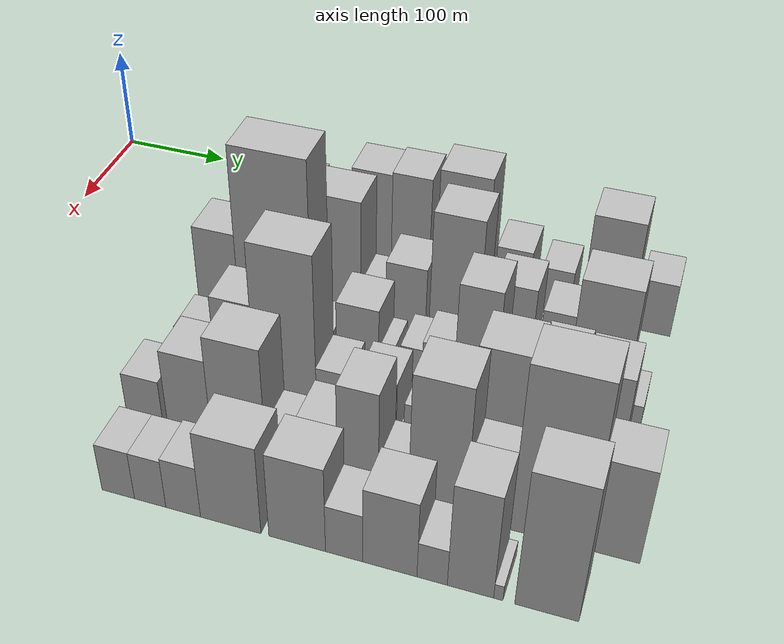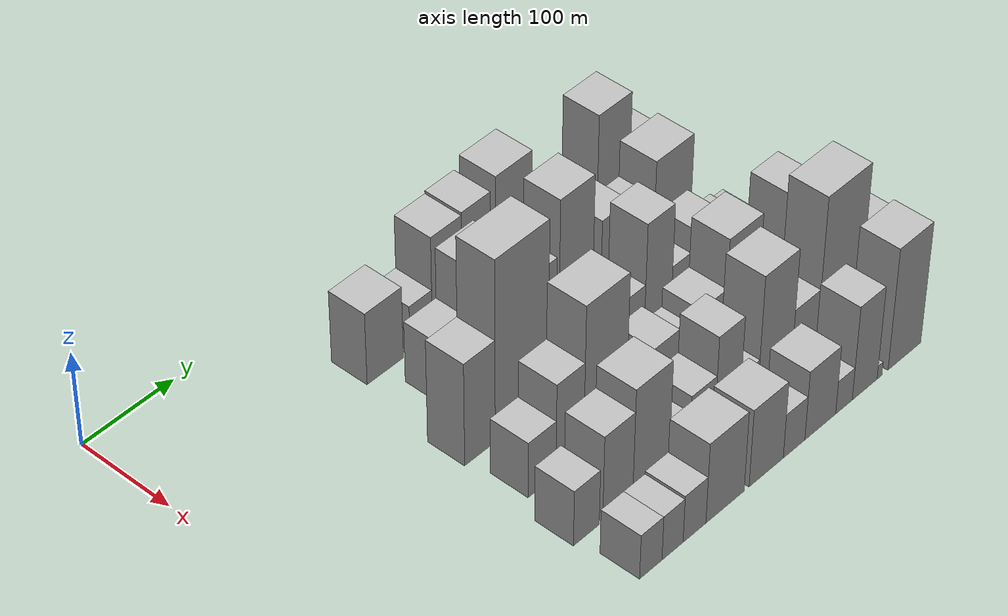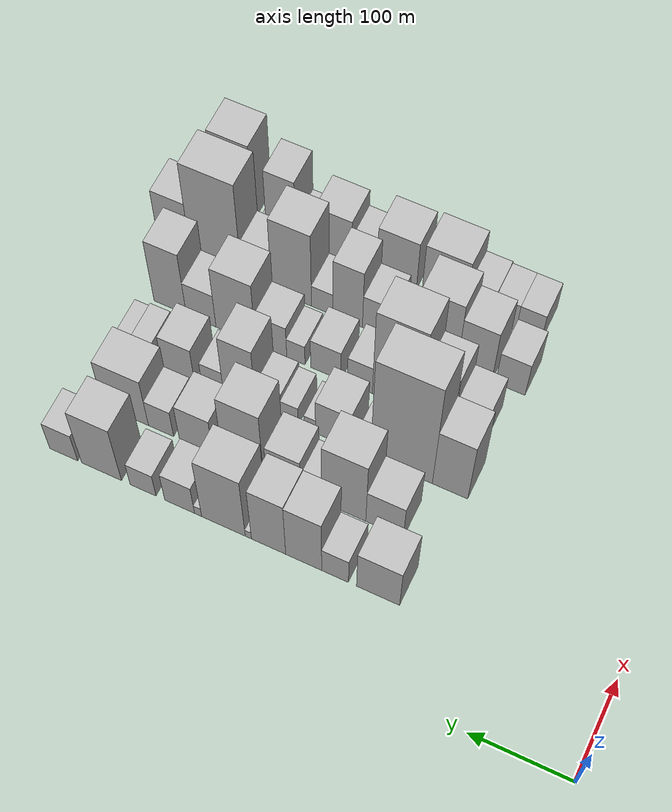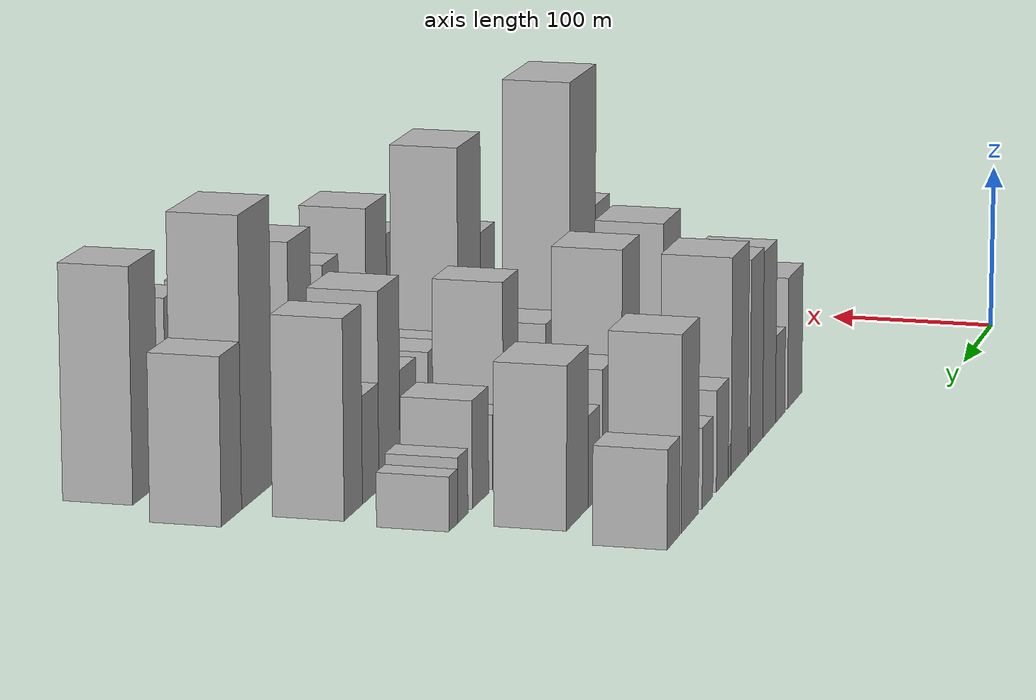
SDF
<sdf version="1.6">
 <world name="default">
  <model name="building_39">
   <static>1</static>
   <pose>100.0000 221.3806 0 0.000000 0.000000 0.000000</pose>
   <link name="link">
    <pose>0 0 39.00 0 0 0</pose>
    <collision name="collision"><geometry><box><size>40.0000 42.3551 78.0000</size></box></geometry></collision>
    <visual name="visual">
     <cast_shadows>0</cast_shadows>
     <geometry><box><size>40.0000 42.3551 78.0000</size></box></geometry>
     <material>
      <script>
       <uri>model://HANNAS_wall/materials/scripts</uri>
       <uri>model://HANNAS_wall/materials/textures</uri>
       <name>vrc/HANNAS_wall</name>
      </script>
     </material>
    </visual>
   </link>
  </model>
  <model name="building_40">
   <static>1</static>
   <pose>100.0000 263.8271 0 0.000000 0.000000 0.000000</pose>
   <link name="link">
    <pose>0 0 25.50 0 0 0</pose>
    <collision name="collision"><geometry><box><size>40.0000 26.5379 51.0000</size></box></geometry></collision>
    <visual name="visual">
     <cast_shadows>0</cast_shadows>
     <geometry><box><size>40.0000 26.5379 51.0000</size></box></geometry>
     <material>
      <script>
       <uri>model://HANNAS_wall/materials/scripts</uri>
       <uri>model://HANNAS_wall/materials/textures</uri>
       <name>vrc/HANNAS_wall</name>
      </script>
     </material>
    </visual>
   </link>
  </model>
  <model name="building_41">
   <static>1</static>
   <pose>100.0000 295.0917 0 0.000000 0.000000 0.000000</pose>
   <link name="link">
    <pose>0 0 54.00 0 0 0</pose>
    <collision name="collision"><geometry><box><size>40.0000 35.9911 108.0000</size></box></geometry></collision>
    <visual name="visual">
     <cast_shadows>0</cast_shadows>
     <geometry><box><size>40.0000 35.9911 108.0000</size></box></geometry>
     <material>
      <script>
       <uri>model://HANNAS_wall/materials/scripts</uri>
       <uri>model://HANNAS_wall/materials/textures</uri>
       <name>vrc/HANNAS_wall</name>
      </script>
     </material>
    </visual>
   </link>
  </model>
  <model name="building_42">
   <static>1</static>
   <pose>100.0000 330.3395 0 0.000000 0.000000 0.000000</pose>
   <link name="link">
    <pose>0 0 55.50 0 0 0</pose>
    <collision name="collision"><geometry><box><size>40.0000 34.5045 111.0000</size></box></geometry></collision>
    <visual name="visual">
     <cast_shadows>0</cast_shadows>
     <geometry><box><size>40.0000 34.5045 111.0000</size></box></geometry>
     <material>
      <script>
       <uri>model://HANNAS_wall/materials/scripts</uri>
       <uri>model://HANNAS_wall/materials/textures</uri>
       <name>vrc/HANNAS_wall</name>
      </script>
     </material>
    </visual>
   </link>
  </model>
  <model name="building_43">
   <static>1</static>
   <pose>100.0000 350.6911 0 0.000000 0.000000 0.000000</pose>
   <link name="link">
    <pose>0 0 7.50 0 0 0</pose>
    <collision name="collision"><geometry><box><size>40.0000 6.1987 15.0000</size></box></geometry></collision>
    <visual name="visual">
     <cast_shadows>0</cast_shadows>
     <geometry><box><size>40.0000 6.1987 15.0000</size></box></geometry>
     <material>
      <script>
       <uri>model://HANNAS_wall/materials/scripts</uri>
       <uri>model://HANNAS_wall/materials/textures</uri>
       <name>vrc/HANNAS_wall</name>
      </script>
     </material>
    </visual>
   </link>
  </model>
  <model name="building_44">
   <static>1</static>
   <pose>100.0000 376.0655 0 0.000000 0.000000 0.000000</pose>
   <link name="link">
    <pose>0 0 61.50 0 0 0</pose>
    <collision name="collision"><geometry><box><size>40.0000 44.5501 123.0000</size></box></geometry></collision>
    <visual name="visual">
     <cast_shadows>0</cast_shadows>
     <geometry><box><size>40.0000 44.5501 123.0000</size></box></geometry>
     <material>
      <script>
       <uri>model://HANNAS_wall/materials/scripts</uri>
       <uri>model://HANNAS_wall/materials/textures</uri>
       <name>vrc/HANNAS_wall</name>
      </script>
     </material>
    </visual>
   </link>
  </model>
  <model name="building_45">
   <static>1</static>
   <pose>100.0000 401.9519 0 0.000000 0.000000 0.000000</pose>
   <link name="link">
    <pose>0 0 9.00 0 0 0</pose>
    <collision name="collision"><geometry><box><size>40.0000 7.2227 18.0000</size></box></geometry></collision>
    <visual name="visual">
     <cast_shadows>0</cast_shadows>
     <geometry><box><size>40.0000 7.2227 18.0000</size></box></geometry>
     <material>
      <script>
       <uri>model://HANNAS_wall/materials/scripts</uri>
       <uri>model://HANNAS_wall/materials/textures</uri>
       <name>vrc/HANNAS_wall</name>
      </script>
     </material>
    </visual>
   </link>
  </model>
  <model name="building_46">
   <static>1</static>
   <pose>100.0000 420.9281 0 0.000000 0.000000 0.000000</pose>
   <link name="link">
    <pose>0 0 28.50 0 0 0</pose>
    <collision name="collision"><geometry><box><size>40.0000 30.7296 57.0000</size></box></geometry></collision>
    <visual name="visual">
     <cast_shadows>0</cast_shadows>
     <geometry><box><size>40.0000 30.7296 57.0000</size></box></geometry>
     <material>
      <script>
       <uri>model://HANNAS_wall/materials/scripts</uri>
       <uri>model://HANNAS_wall/materials/textures</uri>
       <name>vrc/HANNAS_wall</name>
      </script>
     </material>
    </visual>
   </link>
  </model>
  <model name="building_47">
   <static>1</static>
   <pose>100.0000 458.7642 0 0.000000 0.000000 0.000000</pose>
   <link name="link">
    <pose>0 0 22.50 0 0 0</pose>
    <collision name="collision"><geometry><box><size>40.0000 26.9426 45.0000</size></box></geometry></collision>
    <visual name="visual">
     <cast_shadows>0</cast_shadows>
     <geometry><box><size>40.0000 26.9426 45.0000</size></box></geometry>
     <material>
      <script>
       <uri>model://HANNAS_wall/materials/scripts</uri>
       <uri>model://HANNAS_wall/materials/textures</uri>
       <name>vrc/HANNAS_wall</name>
      </script>
     </material>
    </visual>
   </link>
  </model>
  <model name="building_48">
   <static>1</static>
   <pose>100.0000 502.2088 0 0.000000 0.000000 0.000000</pose>
   <link name="link">
    <pose>0 0 54.00 0 0 0</pose>
    <collision name="collision"><geometry><box><size>40.0000 41.9466 108.0000</size></box></geometry></collision>
    <visual name="visual">
     <cast_shadows>0</cast_shadows>
     <geometry><box><size>40.0000 41.9466 108.0000</size></box></geometry>
     <material>
      <script>
       <uri>model://HANNAS_wall/materials/scripts</uri>
       <uri>model://HANNAS_wall/materials/textures</uri>
       <name>vrc/HANNAS_wall</name>
      </script>
     </material>
    </visual>
   </link>
  </model>
  <model name="building_49">
   <static>1</static>
   <pose>100.0000 541.9943 0 0.000000 0.000000 0.000000</pose>
   <link name="link">
    <pose>0 0 27.00 0 0 0</pose>
    <collision name="collision"><geometry><box><size>40.0000 29.6243 54.0000</size></box></geometry></collision>
    <visual name="visual">
     <cast_shadows>0</cast_shadows>
     <geometry><box><size>40.0000 29.6243 54.0000</size></box></geometry>
     <material>
      <script>
       <uri>model://HANNAS_wall/materials/scripts</uri>
       <uri>model://HANNAS_wall/materials/textures</uri>
       <name>vrc/HANNAS_wall</name>
      </script>
     </material>
    </visual>
   </link>
  </model>
  <model name="building_96">
   <static>1</static>
   <pose>160.0000 242.5137 0 0.000000 0.000000 0.000000</pose>
   <link name="link">
    <pose>0 0 33.00 0 0 0</pose>
    <collision name="collision"><geometry><box><size>40.0000 37.5573 66.0000</size></box></geometry></collision>
    <visual name="visual">
     <cast_shadows>0</cast_shadows>
     <geometry><box><size>40.0000 37.5573 66.0000</size></box></geometry>
     <material>
      <script>
       <uri>model://HANNAS_wall/materials/scripts</uri>
       <uri>model://HANNAS_wall/materials/textures</uri>
       <name>vrc/HANNAS_wall</name>
      </script>
     </material>
    </visual>
   </link>
  </model>
  <model name="building_97">
   <static>1</static>
   <pose>160.0000 283.4881 0 0.000000 0.000000 0.000000</pose>
   <link name="link">
    <pose>0 0 60.00 0 0 0</pose>
    <collision name="collision"><geometry><box><size>40.0000 44.3914 120.0000</size></box></geometry></collision>
    <visual name="visual">
     <cast_shadows>0</cast_shadows>
     <geometry><box><size>40.0000 44.3914 120.0000</size></box></geometry>
     <material>
      <script>
       <uri>model://HANNAS_wall/materials/scripts</uri>
       <uri>model://HANNAS_wall/materials/textures</uri>
       <name>vrc/HANNAS_wall</name>
      </script>
     </material>
    </visual>
   </link>
  </model>
  <model name="building_98">
   <static>1</static>
   <pose>160.0000 316.4869 0 0.000000 0.000000 0.000000</pose>
   <link name="link">
    <pose>0 0 19.50 0 0 0</pose>
    <collision name="collision"><geometry><box><size>40.0000 21.6061 39.0000</size></box></geometry></collision>
    <visual name="visual">
     <cast_shadows>0</cast_shadows>
     <geometry><box><size>40.0000 21.6061 39.0000</size></box></geometry>
     <material>
      <script>
       <uri>model://HANNAS_wall/materials/scripts</uri>
       <uri>model://HANNAS_wall/materials/textures</uri>
       <name>vrc/HANNAS_wall</name>
      </script>
     </material>
    </visual>
   </link>
  </model>
  <model name="building_99">
   <static>1</static>
   <pose>160.0000 344.7791 0 0.000000 0.000000 0.000000</pose>
   <link name="link">
    <pose>0 0 33.00 0 0 0</pose>
    <collision name="collision"><geometry><box><size>40.0000 34.9784 66.0000</size></box></geometry></collision>
    <visual name="visual">
     <cast_shadows>0</cast_shadows>
     <geometry><box><size>40.0000 34.9784 66.0000</size></box></geometry>
     <material>
      <script>
       <uri>model://HANNAS_wall/materials/scripts</uri>
       <uri>model://HANNAS_wall/materials/textures</uri>
       <name>vrc/HANNAS_wall</name>
      </script>
     </material>
    </visual>
   </link>
  </model>
  <model name="building_100">
   <static>1</static>
   <pose>160.0000 386.2729 0 0.000000 0.000000 0.000000</pose>
   <link name="link">
    <pose>0 0 63.00 0 0 0</pose>
    <collision name="collision"><geometry><box><size>40.0000 42.0091 126.0000</size></box></geometry></collision>
    <visual name="visual">
     <cast_shadows>0</cast_shadows>
     <geometry><box><size>40.0000 42.0091 126.0000</size></box></geometry>
     <material>
      <script>
       <uri>model://HANNAS_wall/materials/scripts</uri>
       <uri>model://HANNAS_wall/materials/textures</uri>
       <name>vrc/HANNAS_wall</name>
      </script>
     </material>
    </visual>
   </link>
  </model>
  <model name="building_101">
   <static>1</static>
   <pose>160.0000 412.4397 0 0.000000 0.000000 0.000000</pose>
   <link name="link">
    <pose>0 0 12.00 0 0 0</pose>
    <collision name="collision"><geometry><box><size>40.0000 10.3246 24.0000</size></box></geometry></collision>
    <visual name="visual">
     <cast_shadows>0</cast_shadows>
     <geometry><box><size>40.0000 10.3246 24.0000</size></box></geometry>
     <material>
      <script>
       <uri>model://HANNAS_wall/materials/scripts</uri>
       <uri>model://HANNAS_wall/materials/textures</uri>
       <name>vrc/HANNAS_wall</name>
      </script>
     </material>
    </visual>
   </link>
  </model>
  <model name="building_102">
   <static>1</static>
   <pose>160.0000 435.0619 0 0.000000 0.000000 0.000000</pose>
   <link name="link">
    <pose>0 0 34.50 0 0 0</pose>
    <collision name="collision"><geometry><box><size>40.0000 34.9196 69.0000</size></box></geometry></collision>
    <visual name="visual">
     <cast_shadows>0</cast_shadows>
     <geometry><box><size>40.0000 34.9196 69.0000</size></box></geometry>
     <material>
      <script>
       <uri>model://HANNAS_wall/materials/scripts</uri>
       <uri>model://HANNAS_wall/materials/textures</uri>
       <name>vrc/HANNAS_wall</name>
      </script>
     </material>
    </visual>
   </link>
  </model>
  <model name="building_103">
   <static>1</static>
   <pose>160.0000 471.7679 0 0.000000 0.000000 0.000000</pose>
   <link name="link">
    <pose>0 0 25.50 0 0 0</pose>
    <collision name="collision"><geometry><box><size>40.0000 26.4926 51.0000</size></box></geometry></collision>
    <visual name="visual">
     <cast_shadows>0</cast_shadows>
     <geometry><box><size>40.0000 26.4926 51.0000</size></box></geometry>
     <material>
      <script>
       <uri>model://HANNAS_wall/materials/scripts</uri>
       <uri>model://HANNAS_wall/materials/textures</uri>
       <name>vrc/HANNAS_wall</name>
      </script>
     </material>
    </visual>
   </link>
  </model>
  <model name="building_104">
   <static>1</static>
   <pose>160.0000 509.1360 0 0.000000 0.000000 0.000000</pose>
   <link name="link">
    <pose>0 0 45.00 0 0 0</pose>
    <collision name="collision"><geometry><box><size>40.0000 48.2435 90.0000</size></box></geometry></collision>
    <visual name="visual">
     <cast_shadows>0</cast_shadows>
     <geometry><box><size>40.0000 48.2435 90.0000</size></box></geometry>
     <material>
      <script>
       <uri>model://HANNAS_wall/materials/scripts</uri>
       <uri>model://HANNAS_wall/materials/textures</uri>
       <name>vrc/HANNAS_wall</name>
      </script>
     </material>
    </visual>
   </link>
  </model>
  <model name="building_148">
   <static>1</static>
   <pose>220.0000 203.9189 0 0.000000 0.000000 0.000000</pose>
   <link name="link">
    <pose>0 0 55.50 0 0 0</pose>
    <collision name="collision"><geometry><box><size>40.0000 35.5840 111.0000</size></box></geometry></collision>
    <visual name="visual">
     <cast_shadows>0</cast_shadows>
     <geometry><box><size>40.0000 35.5840 111.0000</size></box></geometry>
     <material>
      <script>
       <uri>model://HANNAS_wall/materials/scripts</uri>
       <uri>model://HANNAS_wall/materials/textures</uri>
       <name>vrc/HANNAS_wall</name>
      </script>
     </material>
    </visual>
   </link>
  </model>
  <model name="building_149">
   <static>1</static>
   <pose>220.0000 253.0381 0 0.000000 0.000000 0.000000</pose>
   <link name="link">
    <pose>0 0 97.50 0 0 0</pose>
    <collision name="collision"><geometry><box><size>40.0000 62.6543 195.0000</size></box></geometry></collision>
    <visual name="visual">
     <cast_shadows>0</cast_shadows>
     <geometry><box><size>40.0000 62.6543 195.0000</size></box></geometry>
     <material>
      <script>
       <uri>model://HANNAS_wall/materials/scripts</uri>
       <uri>model://HANNAS_wall/materials/textures</uri>
       <name>vrc/HANNAS_wall</name>
      </script>
     </material>
    </visual>
   </link>
  </model>
  <model name="building_150">
   <static>1</static>
   <pose>220.0000 292.7173 0 0.000000 0.000000 0.000000</pose>
   <link name="link">
    <pose>0 0 15.00 0 0 0</pose>
    <collision name="collision"><geometry><box><size>40.0000 16.7041 30.0000</size></box></geometry></collision>
    <visual name="visual">
     <cast_shadows>0</cast_shadows>
     <geometry><box><size>40.0000 16.7041 30.0000</size></box></geometry>
     <material>
      <script>
       <uri>model://HANNAS_wall/materials/scripts</uri>
       <uri>model://HANNAS_wall/materials/textures</uri>
       <name>vrc/HANNAS_wall</name>
      </script>
     </material>
    </visual>
   </link>
  </model>
  <model name="building_151">
   <static>1</static>
   <pose>220.0000 322.8908 0 0.000000 0.000000 0.000000</pose>
   <link name="link">
    <pose>0 0 33.00 0 0 0</pose>
    <collision name="collision"><geometry><box><size>40.0000 35.6428 66.0000</size></box></geometry></collision>
    <visual name="visual">
     <cast_shadows>0</cast_shadows>
     <geometry><box><size>40.0000 35.6428 66.0000</size></box></geometry>
     <material>
      <script>
       <uri>model://HANNAS_wall/materials/scripts</uri>
       <uri>model://HANNAS_wall/materials/textures</uri>
       <name>vrc/HANNAS_wall</name>
      </script>
     </material>
    </visual>
   </link>
  </model>
  <model name="building_152">
   <static>1</static>
   <pose>220.0000 346.6887 0 0.000000 0.000000 0.000000</pose>
   <link name="link">
    <pose>0 0 13.50 0 0 0</pose>
    <collision name="collision"><geometry><box><size>40.0000 11.9531 27.0000</size></box></geometry></collision>
    <visual name="visual">
     <cast_shadows>0</cast_shadows>
     <geometry><box><size>40.0000 11.9531 27.0000</size></box></geometry>
     <material>
      <script>
       <uri>model://HANNAS_wall/materials/scripts</uri>
       <uri>model://HANNAS_wall/materials/textures</uri>
       <name>vrc/HANNAS_wall</name>
      </script>
     </material>
    </visual>
   </link>
  </model>
  <model name="building_153">
   <static>1</static>
   <pose>220.0000 367.7406 0 0.000000 0.000000 0.000000</pose>
   <link name="link">
    <pose>0 0 18.00 0 0 0</pose>
    <collision name="collision"><geometry><box><size>40.0000 18.1506 36.0000</size></box></geometry></collision>
    <visual name="visual">
     <cast_shadows>0</cast_shadows>
     <geometry><box><size>40.0000 18.1506 36.0000</size></box></geometry>
     <material>
      <script>
       <uri>model://HANNAS_wall/materials/scripts</uri>
       <uri>model://HANNAS_wall/materials/textures</uri>
       <name>vrc/HANNAS_wall</name>
      </script>
     </material>
    </visual>
   </link>
  </model>
  <model name="building_154">
   <static>1</static>
   <pose>220.0000 389.9345 0 0.000000 0.000000 0.000000</pose>
   <link name="link">
    <pose>0 0 22.50 0 0 0</pose>
    <collision name="collision"><geometry><box><size>40.0000 26.2372 45.0000</size></box></geometry></collision>
    <visual name="visual">
     <cast_shadows>0</cast_shadows>
     <geometry><box><size>40.0000 26.2372 45.0000</size></box></geometry>
     <material>
      <script>
       <uri>model://HANNAS_wall/materials/scripts</uri>
       <uri>model://HANNAS_wall/materials/textures</uri>
       <name>vrc/HANNAS_wall</name>
      </script>
     </material>
    </visual>
   </link>
  </model>
  <model name="building_155">
   <static>1</static>
   <pose>220.0000 420.0247 0 0.000000 0.000000 0.000000</pose>
   <link name="link">
    <pose>0 0 55.50 0 0 0</pose>
    <collision name="collision"><geometry><box><size>40.0000 33.9432 111.0000</size></box></geometry></collision>
    <visual name="visual">
     <cast_shadows>0</cast_shadows>
     <geometry><box><size>40.0000 33.9432 111.0000</size></box></geometry>
     <material>
      <script>
       <uri>model://HANNAS_wall/materials/scripts</uri>
       <uri>model://HANNAS_wall/materials/textures</uri>
       <name>vrc/HANNAS_wall</name>
      </script>
     </material>
    </visual>
   </link>
  </model>
  <model name="building_156">
   <static>1</static>
   <pose>220.0000 448.5313 0 0.000000 0.000000 0.000000</pose>
   <link name="link">
    <pose>0 0 21.00 0 0 0</pose>
    <collision name="collision"><geometry><box><size>40.0000 23.0702 42.0000</size></box></geometry></collision>
    <visual name="visual">
     <cast_shadows>0</cast_shadows>
     <geometry><box><size>40.0000 23.0702 42.0000</size></box></geometry>
     <material>
      <script>
       <uri>model://HANNAS_wall/materials/scripts</uri>
       <uri>model://HANNAS_wall/materials/textures</uri>
       <name>vrc/HANNAS_wall</name>
      </script>
     </material>
    </visual>
   </link>
  </model>
  <model name="building_157">
   <static>1</static>
   <pose>220.0000 485.1778 0 0.000000 0.000000 0.000000</pose>
   <link name="link">
    <pose>0 0 30.00 0 0 0</pose>
    <collision name="collision"><geometry><box><size>40.0000 34.2228 60.0000</size></box></geometry></collision>
    <visual name="visual">
     <cast_shadows>0</cast_shadows>
     <geometry><box><size>40.0000 34.2228 60.0000</size></box></geometry>
     <material>
      <script>
       <uri>model://HANNAS_wall/materials/scripts</uri>
       <uri>model://HANNAS_wall/materials/textures</uri>
       <name>vrc/HANNAS_wall</name>
      </script>
     </material>
    </visual>
   </link>
  </model>
  <model name="building_158">
   <static>1</static>
   <pose>220.0000 521.9402 0 0.000000 0.000000 0.000000</pose>
   <link name="link">
    <pose>0 0 18.00 0 0 0</pose>
    <collision name="collision"><geometry><box><size>40.0000 21.3019 36.0000</size></box></geometry></collision>
    <visual name="visual">
     <cast_shadows>0</cast_shadows>
     <geometry><box><size>40.0000 21.3019 36.0000</size></box></geometry>
     <material>
      <script>
       <uri>model://HANNAS_wall/materials/scripts</uri>
       <uri>model://HANNAS_wall/materials/textures</uri>
       <name>vrc/HANNAS_wall</name>
      </script>
     </material>
    </visual>
   </link>
  </model>
  <model name="building_159">
   <static>1</static>
   <pose>220.0000 541.1956 0 0.000000 0.000000 0.000000</pose>
   <link name="link">
    <pose>0 0 15.00 0 0 0</pose>
    <collision name="collision"><geometry><box><size>40.0000 17.2089 30.0000</size></box></geometry></collision>
    <visual name="visual">
     <cast_shadows>0</cast_shadows>
     <geometry><box><size>40.0000 17.2089 30.0000</size></box></geometry>
     <material>
      <script>
       <uri>model://HANNAS_wall/materials/scripts</uri>
       <uri>model://HANNAS_wall/materials/textures</uri>
       <name>vrc/HANNAS_wall</name>
      </script>
     </material>
    </visual>
   </link>
  </model>
  <model name="building_199">
   <static>1</static>
   <pose>280.0000 210.2119 0 0.000000 0.000000 0.000000</pose>
   <link name="link">
    <pose>0 0 30.00 0 0 0</pose>
    <collision name="collision"><geometry><box><size>40.0000 32.4136 60.0000</size></box></geometry></collision>
    <visual name="visual">
     <cast_shadows>0</cast_shadows>
     <geometry><box><size>40.0000 32.4136 60.0000</size></box></geometry>
     <material>
      <script>
       <uri>model://HANNAS_wall/materials/scripts</uri>
       <uri>model://HANNAS_wall/materials/textures</uri>
       <name>vrc/HANNAS_wall</name>
      </script>
     </material>
    </visual>
   </link>
  </model>
  <model name="building_200">
   <static>1</static>
   <pose>280.0000 242.8507 0 0.000000 0.000000 0.000000</pose>
   <link name="link">
    <pose>0 0 49.50 0 0 0</pose>
    <collision name="collision"><geometry><box><size>40.0000 32.8638 99.0000</size></box></geometry></collision>
    <visual name="visual">
     <cast_shadows>0</cast_shadows>
     <geometry><box><size>40.0000 32.8638 99.0000</size></box></geometry>
     <material>
      <script>
       <uri>model://HANNAS_wall/materials/scripts</uri>
       <uri>model://HANNAS_wall/materials/textures</uri>
       <name>vrc/HANNAS_wall</name>
      </script>
     </material>
    </visual>
   </link>
  </model>
  <model name="building_201">
   <static>1</static>
   <pose>280.0000 284.7451 0 0.000000 0.000000 0.000000</pose>
   <link name="link">
    <pose>0 0 79.50 0 0 0</pose>
    <collision name="collision"><geometry><box><size>40.0000 50.9250 159.0000</size></box></geometry></collision>
    <visual name="visual">
     <cast_shadows>0</cast_shadows>
     <geometry><box><size>40.0000 50.9250 159.0000</size></box></geometry>
     <material>
      <script>
       <uri>model://HANNAS_wall/materials/scripts</uri>
       <uri>model://HANNAS_wall/materials/textures</uri>
       <name>vrc/HANNAS_wall</name>
      </script>
     </material>
    </visual>
   </link>
  </model>
  <model name="building_202">
   <static>1</static>
   <pose>280.0000 323.1229 0 0.000000 0.000000 0.000000</pose>
   <link name="link">
    <pose>0 0 25.50 0 0 0</pose>
    <collision name="collision"><geometry><box><size>40.0000 25.8307 51.0000</size></box></geometry></collision>
    <visual name="visual">
     <cast_shadows>0</cast_shadows>
     <geometry><box><size>40.0000 25.8307 51.0000</size></box></geometry>
     <material>
      <script>
       <uri>model://HANNAS_wall/materials/scripts</uri>
       <uri>model://HANNAS_wall/materials/textures</uri>
       <name>vrc/HANNAS_wall</name>
      </script>
     </material>
    </visual>
   </link>
  </model>
  <model name="building_203">
   <static>1</static>
   <pose>280.0000 358.8118 0 0.000000 0.000000 0.000000</pose>
   <link name="link">
    <pose>0 0 27.00 0 0 0</pose>
    <collision name="collision"><geometry><box><size>40.0000 31.5470 54.0000</size></box></geometry></collision>
    <visual name="visual">
     <cast_shadows>0</cast_shadows>
     <geometry><box><size>40.0000 31.5470 54.0000</size></box></geometry>
     <material>
      <script>
       <uri>model://HANNAS_wall/materials/scripts</uri>
       <uri>model://HANNAS_wall/materials/textures</uri>
       <name>vrc/HANNAS_wall</name>
      </script>
     </material>
    </visual>
   </link>
  </model>
  <model name="building_204">
   <static>1</static>
   <pose>280.0000 390.2404 0 0.000000 0.000000 0.000000</pose>
   <link name="link">
    <pose>0 0 18.00 0 0 0</pose>
    <collision name="collision"><geometry><box><size>40.0000 19.3102 36.0000</size></box></geometry></collision>
    <visual name="visual">
     <cast_shadows>0</cast_shadows>
     <geometry><box><size>40.0000 19.3102 36.0000</size></box></geometry>
     <material>
      <script>
       <uri>model://HANNAS_wall/materials/scripts</uri>
       <uri>model://HANNAS_wall/materials/textures</uri>
       <name>vrc/HANNAS_wall</name>
      </script>
     </material>
    </visual>
   </link>
  </model>
  <model name="building_205">
   <static>1</static>
   <pose>280.0000 416.5583 0 0.000000 0.000000 0.000000</pose>
   <link name="link">
    <pose>0 0 28.50 0 0 0</pose>
    <collision name="collision"><geometry><box><size>40.0000 33.3257 57.0000</size></box></geometry></collision>
    <visual name="visual">
     <cast_shadows>0</cast_shadows>
     <geometry><box><size>40.0000 33.3257 57.0000</size></box></geometry>
     <material>
      <script>
       <uri>model://HANNAS_wall/materials/scripts</uri>
       <uri>model://HANNAS_wall/materials/textures</uri>
       <name>vrc/HANNAS_wall</name>
      </script>
     </material>
    </visual>
   </link>
  </model>
  <model name="building_206">
   <static>1</static>
   <pose>280.0000 454.3594 0 0.000000 0.000000 0.000000</pose>
   <link name="link">
    <pose>0 0 55.50 0 0 0</pose>
    <collision name="collision"><geometry><box><size>40.0000 42.2766 111.0000</size></box></geometry></collision>
    <visual name="visual">
     <cast_shadows>0</cast_shadows>
     <geometry><box><size>40.0000 42.2766 111.0000</size></box></geometry>
     <material>
      <script>
       <uri>model://HANNAS_wall/materials/scripts</uri>
       <uri>model://HANNAS_wall/materials/textures</uri>
       <name>vrc/HANNAS_wall</name>
      </script>
     </material>
    </visual>
   </link>
  </model>
  <model name="building_207">
   <static>1</static>
   <pose>280.0000 491.5989 0 0.000000 0.000000 0.000000</pose>
   <link name="link">
    <pose>0 0 30.00 0 0 0</pose>
    <collision name="collision"><geometry><box><size>40.0000 32.2023 60.0000</size></box></geometry></collision>
    <visual name="visual">
     <cast_shadows>0</cast_shadows>
     <geometry><box><size>40.0000 32.2023 60.0000</size></box></geometry>
     <material>
      <script>
       <uri>model://HANNAS_wall/materials/scripts</uri>
       <uri>model://HANNAS_wall/materials/textures</uri>
       <name>vrc/HANNAS_wall</name>
      </script>
     </material>
    </visual>
   </link>
  </model>
  <model name="building_208">
   <static>1</static>
   <pose>280.0000 525.2257 0 0.000000 0.000000 0.000000</pose>
   <link name="link">
    <pose>0 0 55.50 0 0 0</pose>
    <collision name="collision"><geometry><box><size>40.0000 35.0512 111.0000</size></box></geometry></collision>
    <visual name="visual">
     <cast_shadows>0</cast_shadows>
     <geometry><box><size>40.0000 35.0512 111.0000</size></box></geometry>
     <material>
      <script>
       <uri>model://HANNAS_wall/materials/scripts</uri>
       <uri>model://HANNAS_wall/materials/textures</uri>
       <name>vrc/HANNAS_wall</name>
      </script>
     </material>
    </visual>
   </link>
  </model>
  <model name="building_249">
   <static>1</static>
   <pose>340.0000 194.3852 0 0.000000 0.000000 0.000000</pose>
   <link name="link">
    <pose>0 0 30.00 0 0 0</pose>
    <collision name="collision"><geometry><box><size>40.0000 30.1065 60.0000</size></box></geometry></collision>
    <visual name="visual">
     <cast_shadows>0</cast_shadows>
     <geometry><box><size>40.0000 30.1065 60.0000</size></box></geometry>
     <material>
      <script>
       <uri>model://HANNAS_wall/materials/scripts</uri>
       <uri>model://HANNAS_wall/materials/textures</uri>
       <name>vrc/HANNAS_wall</name>
      </script>
     </material>
    </visual>
   </link>
  </model>
  <model name="building_250">
   <static>1</static>
   <pose>340.0000 231.2719 0 0.000000 0.000000 0.000000</pose>
   <link name="link">
    <pose>0 0 46.50 0 0 0</pose>
    <collision name="collision"><geometry><box><size>40.0000 35.6670 93.0000</size></box></geometry></collision>
    <visual name="visual">
     <cast_shadows>0</cast_shadows>
     <geometry><box><size>40.0000 35.6670 93.0000</size></box></geometry>
     <material>
      <script>
       <uri>model://HANNAS_wall/materials/scripts</uri>
       <uri>model://HANNAS_wall/materials/textures</uri>
       <name>vrc/HANNAS_wall</name>
      </script>
     </material>
    </visual>
   </link>
  </model>
  <model name="building_251">
   <static>1</static>
   <pose>340.0000 270.7932 0 0.000000 0.000000 0.000000</pose>
   <link name="link">
    <pose>0 0 58.50 0 0 0</pose>
    <collision name="collision"><geometry><box><size>40.0000 43.3755 117.0000</size></box></geometry></collision>
    <visual name="visual">
     <cast_shadows>0</cast_shadows>
     <geometry><box><size>40.0000 43.3755 117.0000</size></box></geometry>
     <material>
      <script>
       <uri>model://HANNAS_wall/materials/scripts</uri>
       <uri>model://HANNAS_wall/materials/textures</uri>
       <name>vrc/HANNAS_wall</name>
      </script>
     </material>
    </visual>
   </link>
  </model>
  <model name="building_252">
   <static>1</static>
   <pose>340.0000 305.0345 0 0.000000 0.000000 0.000000</pose>
   <link name="link">
    <pose>0 0 21.00 0 0 0</pose>
    <collision name="collision"><geometry><box><size>40.0000 25.1072 42.0000</size></box></geometry></collision>
    <visual name="visual">
     <cast_shadows>0</cast_shadows>
     <geometry><box><size>40.0000 25.1072 42.0000</size></box></geometry>
     <material>
      <script>
       <uri>model://HANNAS_wall/materials/scripts</uri>
       <uri>model://HANNAS_wall/materials/textures</uri>
       <name>vrc/HANNAS_wall</name>
      </script>
     </material>
    </visual>
   </link>
  </model>
  <model name="building_253">
   <static>1</static>
   <pose>340.0000 332.9777 0 0.000000 0.000000 0.000000</pose>
   <link name="link">
    <pose>0 0 30.00 0 0 0</pose>
    <collision name="collision"><geometry><box><size>40.0000 30.7793 60.0000</size></box></geometry></collision>
    <visual name="visual">
     <cast_shadows>0</cast_shadows>
     <geometry><box><size>40.0000 30.7793 60.0000</size></box></geometry>
     <material>
      <script>
       <uri>model://HANNAS_wall/materials/scripts</uri>
       <uri>model://HANNAS_wall/materials/textures</uri>
       <name>vrc/HANNAS_wall</name>
      </script>
     </material>
    </visual>
   </link>
  </model>
  <model name="building_254">
   <static>1</static>
   <pose>340.0000 364.1140 0 0.000000 0.000000 0.000000</pose>
   <link name="link">
    <pose>0 0 51.00 0 0 0</pose>
    <collision name="collision"><geometry><box><size>40.0000 31.4933 102.0000</size></box></geometry></collision>
    <visual name="visual">
     <cast_shadows>0</cast_shadows>
     <geometry><box><size>40.0000 31.4933 102.0000</size></box></geometry>
     <material>
      <script>
       <uri>model://HANNAS_wall/materials/scripts</uri>
       <uri>model://HANNAS_wall/materials/textures</uri>
       <name>vrc/HANNAS_wall</name>
      </script>
     </material>
    </visual>
   </link>
  </model>
  <model name="building_255">
   <static>1</static>
   <pose>340.0000 391.2340 0 0.000000 0.000000 0.000000</pose>
   <link name="link">
    <pose>0 0 19.50 0 0 0</pose>
    <collision name="collision"><geometry><box><size>40.0000 22.7467 39.0000</size></box></geometry></collision>
    <visual name="visual">
     <cast_shadows>0</cast_shadows>
     <geometry><box><size>40.0000 22.7467 39.0000</size></box></geometry>
     <material>
      <script>
       <uri>model://HANNAS_wall/materials/scripts</uri>
       <uri>model://HANNAS_wall/materials/textures</uri>
       <name>vrc/HANNAS_wall</name>
      </script>
     </material>
    </visual>
   </link>
  </model>
  <model name="building_256">
   <static>1</static>
   <pose>340.0000 424.1078 0 0.000000 0.000000 0.000000</pose>
   <link name="link">
    <pose>0 0 64.50 0 0 0</pose>
    <collision name="collision"><geometry><box><size>40.0000 43.0009 129.0000</size></box></geometry></collision>
    <visual name="visual">
     <cast_shadows>0</cast_shadows>
     <geometry><box><size>40.0000 43.0009 129.0000</size></box></geometry>
     <material>
      <script>
       <uri>model://HANNAS_wall/materials/scripts</uri>
       <uri>model://HANNAS_wall/materials/textures</uri>
       <name>vrc/HANNAS_wall</name>
      </script>
     </material>
    </visual>
   </link>
  </model>
  <model name="building_257">
   <static>1</static>
   <pose>340.0000 461.9500 0 0.000000 0.000000 0.000000</pose>
   <link name="link">
    <pose>0 0 31.50 0 0 0</pose>
    <collision name="collision"><geometry><box><size>40.0000 32.6835 63.0000</size></box></geometry></collision>
    <visual name="visual">
     <cast_shadows>0</cast_shadows>
     <geometry><box><size>40.0000 32.6835 63.0000</size></box></geometry>
     <material>
      <script>
       <uri>model://HANNAS_wall/materials/scripts</uri>
       <uri>model://HANNAS_wall/materials/textures</uri>
       <name>vrc/HANNAS_wall</name>
      </script>
     </material>
    </visual>
   </link>
  </model>
  <model name="building_258">
   <static>1</static>
   <pose>340.0000 506.1660 0 0.000000 0.000000 0.000000</pose>
   <link name="link">
    <pose>0 0 81.00 0 0 0</pose>
    <collision name="collision"><geometry><box><size>40.0000 55.7484 162.0000</size></box></geometry></collision>
    <visual name="visual">
     <cast_shadows>0</cast_shadows>
     <geometry><box><size>40.0000 55.7484 162.0000</size></box></geometry>
     <material>
      <script>
       <uri>model://HANNAS_wall/materials/scripts</uri>
       <uri>model://HANNAS_wall/materials/textures</uri>
       <name>vrc/HANNAS_wall</name>
      </script>
     </material>
    </visual>
   </link>
  </model>
  <model name="building_259">
   <static>1</static>
   <pose>340.0000 551.8700 0 0.000000 0.000000 0.000000</pose>
   <link name="link">
    <pose>0 0 46.50 0 0 0</pose>
    <collision name="collision"><geometry><box><size>40.0000 35.6597 93.0000</size></box></geometry></collision>
    <visual name="visual">
     <cast_shadows>0</cast_shadows>
     <geometry><box><size>40.0000 35.6597 93.0000</size></box></geometry>
     <material>
      <script>
       <uri>model://HANNAS_wall/materials/scripts</uri>
       <uri>model://HANNAS_wall/materials/textures</uri>
       <name>vrc/HANNAS_wall</name>
      </script>
     </material>
    </visual>
   </link>
  </model>
  <model name="building_297">
   <static>1</static>
   <pose>400.0000 200.5763 0 0.000000 0.000000 0.000000</pose>
   <link name="link">
    <pose>0 0 24.00 0 0 0</pose>
    <collision name="collision"><geometry><box><size>40.0000 26.2889 48.0000</size></box></geometry></collision>
    <visual name="visual">
     <cast_shadows>0</cast_shadows>
     <geometry><box><size>40.0000 26.2889 48.0000</size></box></geometry>
     <material>
      <script>
       <uri>model://HANNAS_wall/materials/scripts</uri>
       <uri>model://HANNAS_wall/materials/textures</uri>
       <name>vrc/HANNAS_wall</name>
      </script>
     </material>
    </visual>
   </link>
  </model>
  <model name="building_298">
   <static>1</static>
   <pose>400.0000 226.2095 0 0.000000 0.000000 0.000000</pose>
   <link name="link">
    <pose>0 0 24.00 0 0 0</pose>
    <collision name="collision"><geometry><box><size>40.0000 24.9774 48.0000</size></box></geometry></collision>
    <visual name="visual">
     <cast_shadows>0</cast_shadows>
     <geometry><box><size>40.0000 24.9774 48.0000</size></box></geometry>
     <material>
      <script>
       <uri>model://HANNAS_wall/materials/scripts</uri>
       <uri>model://HANNAS_wall/materials/textures</uri>
       <name>vrc/HANNAS_wall</name>
      </script>
     </material>
    </visual>
   </link>
  </model>
  <model name="building_299">
   <static>1</static>
   <pose>400.0000 252.3513 0 0.000000 0.000000 0.000000</pose>
   <link name="link">
    <pose>0 0 25.50 0 0 0</pose>
    <collision name="collision"><geometry><box><size>40.0000 27.3063 51.0000</size></box></geometry></collision>
    <visual name="visual">
     <cast_shadows>0</cast_shadows>
     <geometry><box><size>40.0000 27.3063 51.0000</size></box></geometry>
     <material>
      <script>
       <uri>model://HANNAS_wall/materials/scripts</uri>
       <uri>model://HANNAS_wall/materials/textures</uri>
       <name>vrc/HANNAS_wall</name>
      </script>
     </material>
    </visual>
   </link>
  </model>
  <model name="building_300">
   <static>1</static>
   <pose>400.0000 289.2814 0 0.000000 0.000000 0.000000</pose>
   <link name="link">
    <pose>0 0 43.50 0 0 0</pose>
    <collision name="collision"><geometry><box><size>40.0000 46.5539 87.0000</size></box></geometry></collision>
    <visual name="visual">
     <cast_shadows>0</cast_shadows>
     <geometry><box><size>40.0000 46.5539 87.0000</size></box></geometry>
     <material>
      <script>
       <uri>model://HANNAS_wall/materials/scripts</uri>
       <uri>model://HANNAS_wall/materials/textures</uri>
       <name>vrc/HANNAS_wall</name>
      </script>
     </material>
    </visual>
   </link>
  </model>
  <model name="building_301">
   <static>1</static>
   <pose>400.0000 339.7513 0 0.000000 0.000000 0.000000</pose>
   <link name="link">
    <pose>0 0 42.00 0 0 0</pose>
    <collision name="collision"><geometry><box><size>40.0000 42.3859 84.0000</size></box></geometry></collision>
    <visual name="visual">
     <cast_shadows>0</cast_shadows>
     <geometry><box><size>40.0000 42.3859 84.0000</size></box></geometry>
     <material>
      <script>
       <uri>model://HANNAS_wall/materials/scripts</uri>
       <uri>model://HANNAS_wall/materials/textures</uri>
       <name>vrc/HANNAS_wall</name>
      </script>
     </material>
    </visual>
   </link>
  </model>
  <model name="building_302">
   <static>1</static>
   <pose>400.0000 374.5378 0 0.000000 0.000000 0.000000</pose>
   <link name="link">
    <pose>0 0 24.00 0 0 0</pose>
    <collision name="collision"><geometry><box><size>40.0000 27.1870 48.0000</size></box></geometry></collision>
    <visual name="visual">
     <cast_shadows>0</cast_shadows>
     <geometry><box><size>40.0000 27.1870 48.0000</size></box></geometry>
     <material>
      <script>
       <uri>model://HANNAS_wall/materials/scripts</uri>
       <uri>model://HANNAS_wall/materials/textures</uri>
       <name>vrc/HANNAS_wall</name>
      </script>
     </material>
    </visual>
   </link>
  </model>
  <model name="building_303">
   <static>1</static>
   <pose>400.0000 407.7341 0 0.000000 0.000000 0.000000</pose>
   <link name="link">
    <pose>0 0 37.50 0 0 0</pose>
    <collision name="collision"><geometry><box><size>40.0000 39.2056 75.0000</size></box></geometry></collision>
    <visual name="visual">
     <cast_shadows>0</cast_shadows>
     <geometry><box><size>40.0000 39.2056 75.0000</size></box></geometry>
     <material>
      <script>
       <uri>model://HANNAS_wall/materials/scripts</uri>
       <uri>model://HANNAS_wall/materials/textures</uri>
       <name>vrc/HANNAS_wall</name>
      </script>
     </material>
    </visual>
   </link>
  </model>
  <model name="building_304">
   <static>1</static>
   <pose>400.0000 438.0412 0 0.000000 0.000000 0.000000</pose>
   <link name="link">
    <pose>0 0 18.00 0 0 0</pose>
    <collision name="collision"><geometry><box><size>40.0000 21.4087 36.0000</size></box></geometry></collision>
    <visual name="visual">
     <cast_shadows>0</cast_shadows>
     <geometry><box><size>40.0000 21.4087 36.0000</size></box></geometry>
     <material>
      <script>
       <uri>model://HANNAS_wall/materials/scripts</uri>
       <uri>model://HANNAS_wall/materials/textures</uri>
       <name>vrc/HANNAS_wall</name>
      </script>
     </material>
    </visual>
   </link>
  </model>
  <model name="building_305">
   <static>1</static>
   <pose>400.0000 464.9259 0 0.000000 0.000000 0.000000</pose>
   <link name="link">
    <pose>0 0 51.00 0 0 0</pose>
    <collision name="collision"><geometry><box><size>40.0000 32.3607 102.0000</size></box></geometry></collision>
    <visual name="visual">
     <cast_shadows>0</cast_shadows>
     <geometry><box><size>40.0000 32.3607 102.0000</size></box></geometry>
     <material>
      <script>
       <uri>model://HANNAS_wall/materials/scripts</uri>
       <uri>model://HANNAS_wall/materials/textures</uri>
       <name>vrc/HANNAS_wall</name>
      </script>
     </material>
    </visual>
   </link>
  </model>
  <model name="building_306">
   <static>1</static>
   <pose>400.0000 484.3099 0 0.000000 0.000000 0.000000</pose>
   <link name="link">
    <pose>0 0 7.50 0 0 0</pose>
    <collision name="collision"><geometry><box><size>40.0000 6.4074 15.0000</size></box></geometry></collision>
    <visual name="visual">
     <cast_shadows>0</cast_shadows>
     <geometry><box><size>40.0000 6.4074 15.0000</size></box></geometry>
     <material>
      <script>
       <uri>model://HANNAS_wall/materials/scripts</uri>
       <uri>model://HANNAS_wall/materials/textures</uri>
       <name>vrc/HANNAS_wall</name>
      </script>
     </material>
    </visual>
   </link>
  </model>
  <model name="building_307">
   <static>1</static>
   <pose>400.0000 517.2201 0 0.000000 0.000000 0.000000</pose>
   <link name="link">
    <pose>0 0 66.00 0 0 0</pose>
    <collision name="collision"><geometry><box><size>40.0000 43.4129 132.0000</size></box></geometry></collision>
    <visual name="visual">
     <cast_shadows>0</cast_shadows>
     <geometry><box><size>40.0000 43.4129 132.0000</size></box></geometry>
     <material>
      <script>
       <uri>model://HANNAS_wall/materials/scripts</uri>
       <uri>model://HANNAS_wall/materials/textures</uri>
       <name>vrc/HANNAS_wall</name>
      </script>
     </material>
    </visual>
   </link>
  </model>
 </world>
</sdf>
